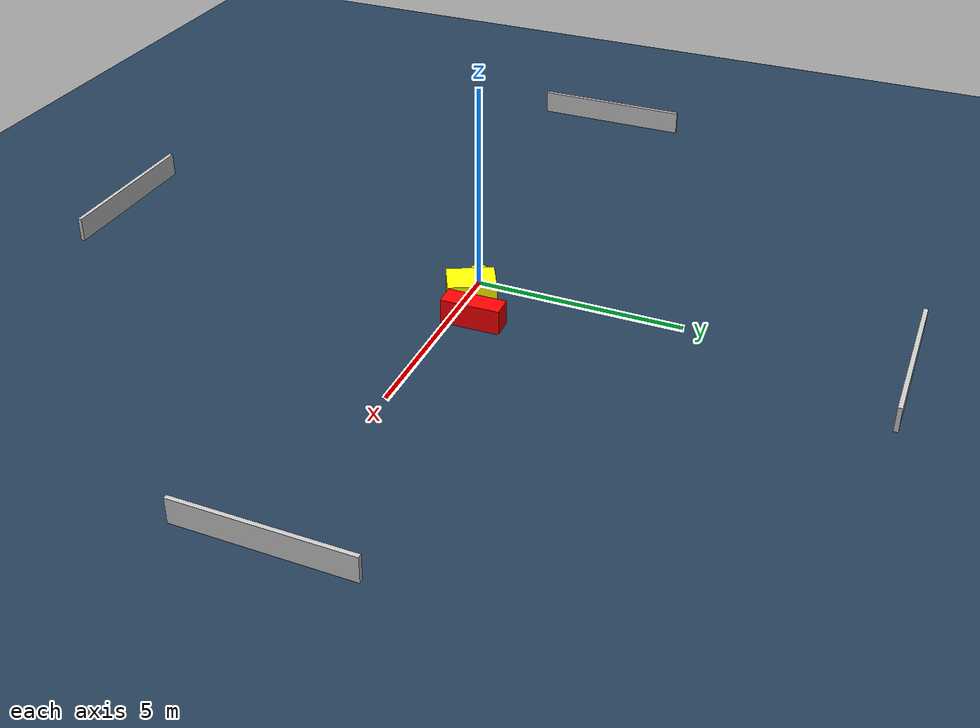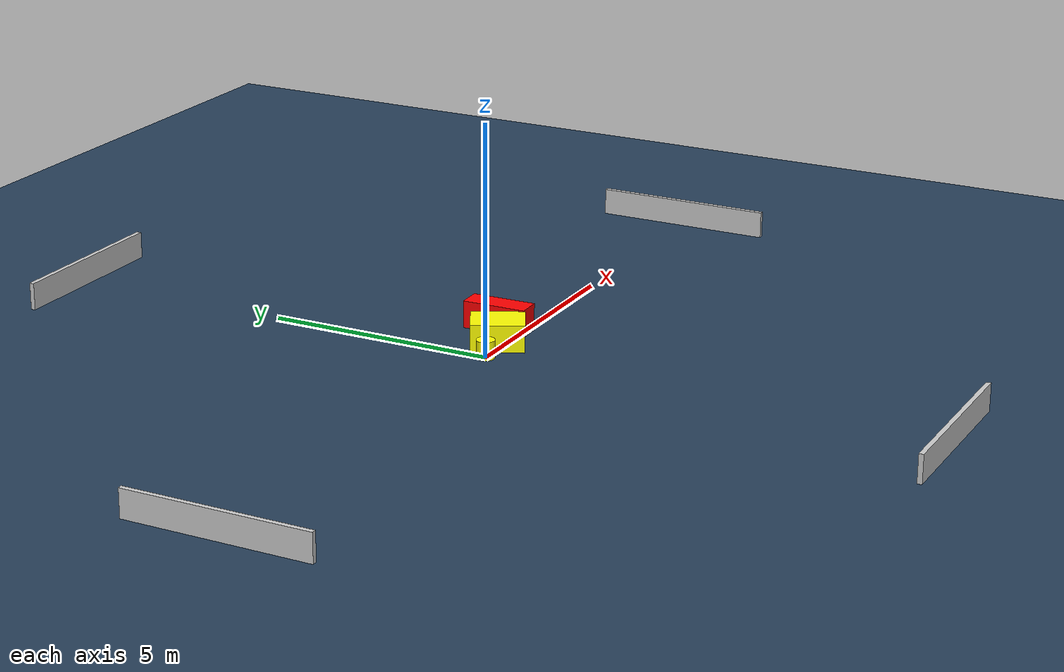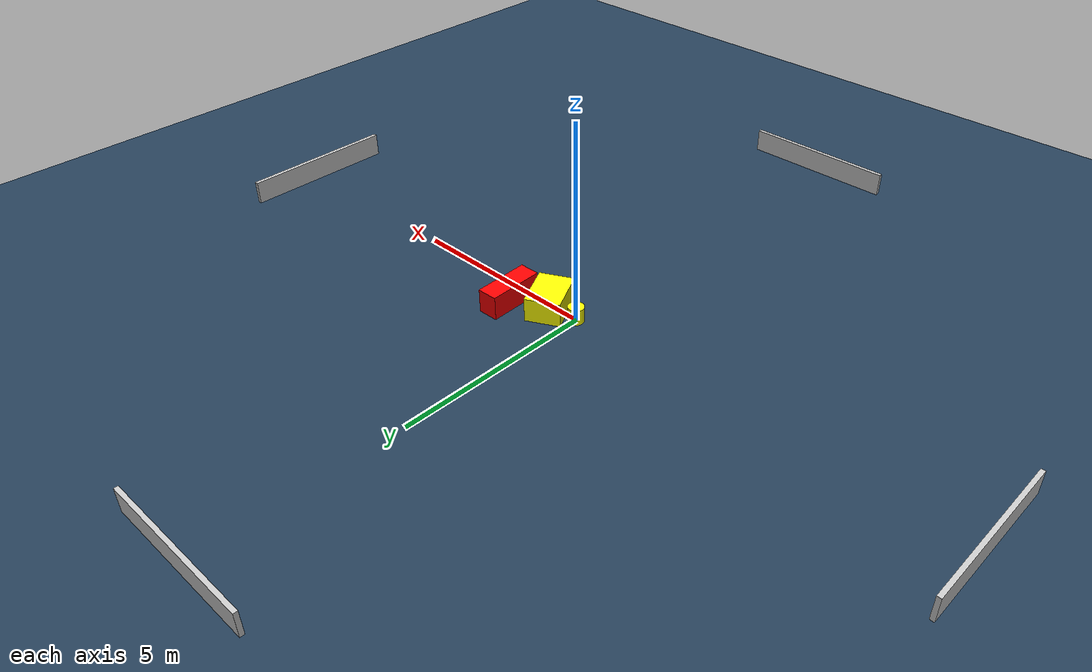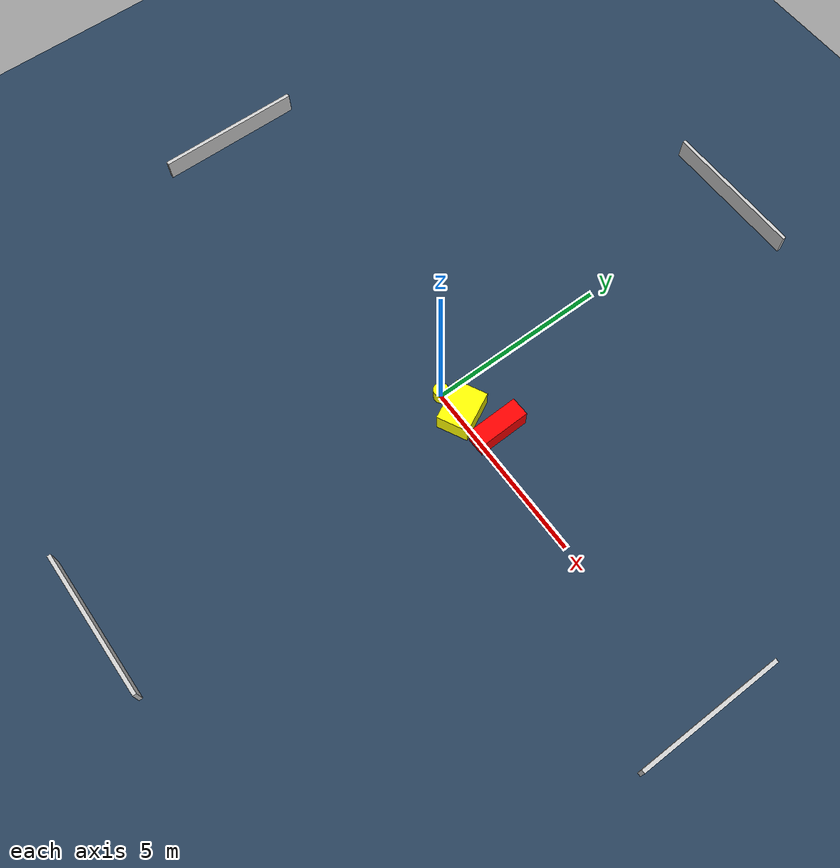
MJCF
<?xml version="1.0" ?>
<mujoco model="generated_environment">
  <option timestep="0.01" integrator="RK4" cone="elliptic"/>
  <default>
    <geom density="1"/>
  </default>
  <asset>
    <texture builtin="gradient" height="3072" name="skybox" rgb1="0.3 0.5 0.7" rgb2="0 0 0" type="skybox" width="512"/>
    <texture builtin="checker" height="300" name="groundplane" rgb1="0.2 0.3 0.4" rgb2="0.1 0.2 0.3" type="2d" width="300"/>
    <material name="groundplane" reflectance="0.2" texrepeat="5 5" texture="groundplane"/>
  </asset>
  <worldbody>
    <light dir="0 0 -1" directional="true" pos="0 0 1.5"/>
    <geom condim="3" friction="0.5 0.005 0.001" material="groundplane" name="floor" pos="0 0 0" size="0 0 0.05" type="plane"/>
    <body name="walls">
      <geom name="wall_1" condim="4" pos="-10.0 0.0 0.3" rgba="0.800000011920929 0.800000011920929 0.800000011920929 1.0" size="0.05 2.0 0.3" type="box"/>
      <geom name="wall_2" condim="4" pos="10.0 0.0 0.3" rgba="0.800000011920929 0.800000011920929 0.800000011920929 1.0" size="0.05 2.0 0.3" type="box"/>
      <geom name="wall_3" condim="4" pos="0.0 -10.0 0.3" rgba="0.800000011920929 0.800000011920929 0.800000011920929 1.0" size="2.0 0.05 0.3" type="box"/>
      <geom name="wall_4" condim="4" pos="0.0 10.0 0.3" rgba="0.800000011920929 0.800000011920929 0.800000011920929 1.0" size="2.0 0.05 0.3" type="box"/>
    </body>
    <body name="robot">
      <joint name="joint_x" type="slide" pos="0 0 0" axis="1 0 0"/>
      <joint name="joint_y" type="slide" pos="0 0 0" axis="0 1 0"/>
      <geom name="robot" type="cylinder" pos="0.0 0.0 0.2" size="0.2 0.2 0.0" mass="5.0" friction="1.0 0.005 0.0001" condim="4" rgba="1.0 1.0 0.0 1.0"/>
    </body>
    <body name="obstacle_1_movable">
      <geom name="obstacle_1_movable" condim="4" pos="0.7411120731423787 0.10974275594395 0.3" euler="0 0 116.86590317553494" friction="0.0 0.005 0.001" rgba="1.0 1.0 0.0 1.0" size="0.5723905258616924 0.431383788919085 0.3" type="box" mass="0.1"/>
      <joint type="free"/>
    </body>
    <body name="obstacle_2_static">
      <geom name="obstacle_2_static" condim="4" pos="1.6415299897584126 0.5515844763539154 0.3" euler="0 0 181.50824332064596" friction="0.0 0.005 0.001" rgba="1.0 0.0 0.0 1.0" size="0.25752485739902115 0.7067987790104047 0.3" type="box"/>
    </body>
  </worldbody>
  <actuator>
    <motor name="actuator_x" joint="joint_x" gear="1" ctrlrange="-1 1"/>
    <motor name="actuator_y" joint="joint_y" gear="1" ctrlrange="-1 1"/>
  </actuator>
</mujoco>
